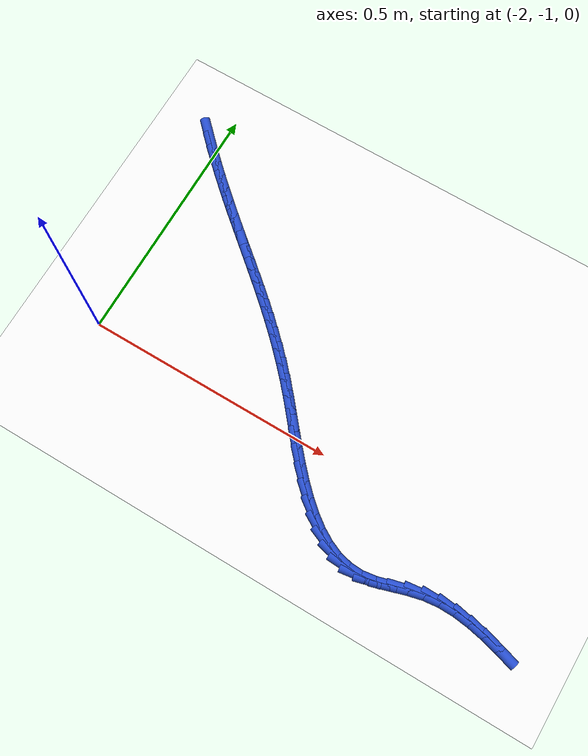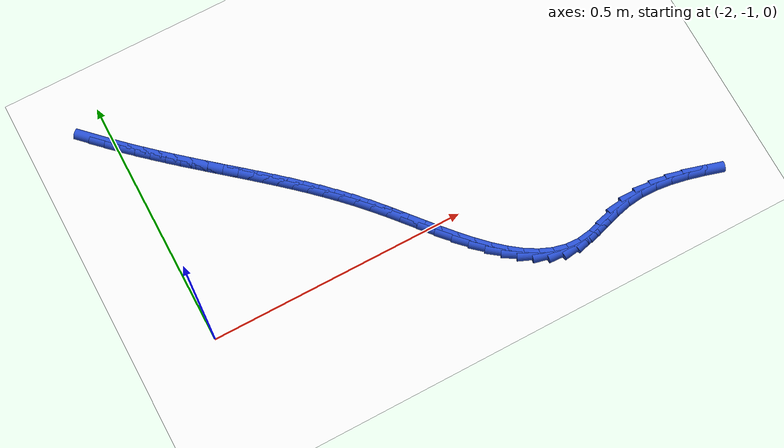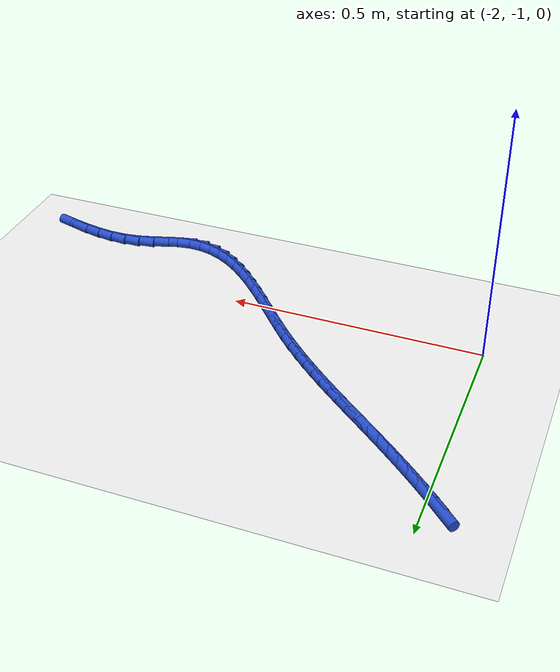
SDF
<sdf version="1.6">
 <world name="default">
  <model name="ground_plane">
   <static>1</static>
   <link name="link">
    <collision name="collision">
     <geometry><plane><normal>0 0 1</normal><size>100 100</size></plane></geometry>
     <surface><friction><ode><mu>100</mu><mu2>50</mu2></ode></friction></surface>
    </collision>
    <visual name="visual">
     <cast_shadows>0</cast_shadows>
     <geometry><plane><normal>0 0 1</normal><size>100 100</size></plane></geometry>
     <material>
      <script><uri>file://media/materials/scripts/gazebo.material</uri><name>Gazebo/WhiteGlow</name></script>
     </material>
    </visual>
   </link>
  </model>
  <model name="line">
   <link name="link_140">
    <pose>-2.0279019053411784 -0.5563829090102963 0.01 0 1.57 -0.7824268850137781</pose>
    <collision name="collision">
     <geometry><cylinder><radius>0.01</radius><length>0.08</length></cylinder></geometry>
    </collision>
    <visual name="visual">
     <material>
      <script><name>Gazebo/Blue</name><uri>file://media/materials/scripts/gazebo.material</uri></script>
     </material>
     <geometry><cylinder><radius>0.01</radius><length>0.08</length></cylinder></geometry>
    </visual>
   </link>
   <link name="link_141">
    <pose>-2.006490066205014 -0.5776678836532863 0.01 0 1.57 -0.7637360443232275</pose>
    <collision name="collision">
     <geometry><cylinder><radius>0.01</radius><length>0.08</length></cylinder></geometry>
    </collision>
    <visual name="visual">
     <material>
      <script><name>Gazebo/Blue</name><uri>file://media/materials/scripts/gazebo.material</uri></script>
     </material>
     <geometry><cylinder><radius>0.01</radius><length>0.08</length></cylinder></geometry>
    </visual>
   </link>
   <link name="link_142">
    <pose>-1.984841494984614 -0.5983982927365451 0.01 0 1.57 -0.7472962214356643</pose>
    <collision name="collision">
     <geometry><cylinder><radius>0.01</radius><length>0.08</length></cylinder></geometry>
    </collision>
    <visual name="visual">
     <material>
      <script><name>Gazebo/Blue</name><uri>file://media/materials/scripts/gazebo.material</uri></script>
     </material>
     <geometry><cylinder><radius>0.01</radius><length>0.08</length></cylinder></geometry>
    </visual>
   </link>
   <link name="link_143">
    <pose>-1.963001435530112 -0.6186343925504257 0.01 0 1.57 -0.733176168077039</pose>
    <collision name="collision">
     <geometry><cylinder><radius>0.01</radius><length>0.08</length></cylinder></geometry>
    </collision>
    <visual name="visual">
     <material>
      <script><name>Gazebo/Blue</name><uri>file://media/materials/scripts/gazebo.material</uri></script>
     </material>
     <geometry><cylinder><radius>0.01</radius><length>0.08</length></cylinder></geometry>
    </visual>
   </link>
   <link name="link_144">
    <pose>-1.9410151316916404 -0.6384364393852803 0.01 0 1.57 -0.7214359435224084</pose>
    <collision name="collision">
     <geometry><cylinder><radius>0.01</radius><length>0.08</length></cylinder></geometry>
    </collision>
    <visual name="visual">
     <material>
      <script><name>Gazebo/Blue</name><uri>file://media/materials/scripts/gazebo.material</uri></script>
     </material>
     <geometry><cylinder><radius>0.01</radius><length>0.08</length></cylinder></geometry>
    </visual>
   </link>
   <link name="link_145">
    <pose>-1.9189278273193322 -0.6578646895314613 0.01 0 1.57 -0.7121288088788986</pose>
    <collision name="collision">
     <geometry><cylinder><radius>0.01</radius><length>0.08</length></cylinder></geometry>
    </collision>
    <visual name="visual">
     <material>
      <script><name>Gazebo/Blue</name><uri>file://media/materials/scripts/gazebo.material</uri></script>
     </material>
     <geometry><cylinder><radius>0.01</radius><length>0.08</length></cylinder></geometry>
    </visual>
   </link>
   <link name="link_146">
    <pose>-1.8967847662633193 -0.6769793992793209 0.01 0 1.57 -0.7053029470883925</pose>
    <collision name="collision">
     <geometry><cylinder><radius>0.01</radius><length>0.08</length></cylinder></geometry>
    </collision>
    <visual name="visual">
     <material>
      <script><name>Gazebo/Blue</name><uri>file://media/materials/scripts/gazebo.material</uri></script>
     </material>
     <geometry><cylinder><radius>0.01</radius><length>0.08</length></cylinder></geometry>
    </visual>
   </link>
   <link name="link_147">
    <pose>-1.8746311923737333 -0.6958408249192126 0.01 0 1.57 -0.7010029186592416</pose>
    <collision name="collision">
     <geometry><cylinder><radius>0.01</radius><length>0.08</length></cylinder></geometry>
    </collision>
    <visual name="visual">
     <material>
      <script><name>Gazebo/Blue</name><uri>file://media/materials/scripts/gazebo.material</uri></script>
     </material>
     <geometry><cylinder><radius>0.01</radius><length>0.08</length></cylinder></geometry>
    </visual>
   </link>
   <link name="link_148">
    <pose>-1.8525123495007094 -0.7145092227414875 0.01 0 1.57 -0.699270776691277</pose>
    <collision name="collision">
     <geometry><cylinder><radius>0.01</radius><length>0.08</length></cylinder></geometry>
    </collision>
    <visual name="visual">
     <material>
      <script><name>Gazebo/Blue</name><uri>file://media/materials/scripts/gazebo.material</uri></script>
     </material>
     <geometry><cylinder><radius>0.01</radius><length>0.08</length></cylinder></geometry>
    </visual>
   </link>
   <link name="link_149">
    <pose>-1.8304734814943784 -0.7330448490364986 0.01 0 1.57 -0.7001537817270586</pose>
    <collision name="collision">
     <geometry><cylinder><radius>0.01</radius><length>0.08</length></cylinder></geometry>
    </collision>
    <visual name="visual">
     <material>
      <script><name>Gazebo/Blue</name><uri>file://media/materials/scripts/gazebo.material</uri></script>
     </material>
     <geometry><cylinder><radius>0.01</radius><length>0.08</length></cylinder></geometry>
    </visual>
   </link>
   <link name="link_150">
    <pose>-1.808559283847693 -0.7515086846787563 0.01 0 1.57 -0.7040315821106202</pose>
    <collision name="collision">
     <geometry><cylinder><radius>0.01</radius><length>0.08</length></cylinder></geometry>
    </collision>
    <visual name="visual">
     <material>
      <script><name>Gazebo/Blue</name><uri>file://media/materials/scripts/gazebo.material</uri></script>
     </material>
     <geometry><cylinder><radius>0.01</radius><length>0.08</length></cylinder></geometry>
    </visual>
   </link>
   <link name="link_151">
    <pose>-1.786787416221254 -0.7699974349511035 0.01 0 1.57 -0.711387075195804</pose>
    <collision name="collision">
     <geometry><cylinder><radius>0.01</radius><length>0.08</length></cylinder></geometry>
    </collision>
    <visual name="visual">
     <material>
      <script><name>Gazebo/Blue</name><uri>file://media/materials/scripts/gazebo.material</uri></script>
     </material>
     <geometry><cylinder><radius>0.01</radius><length>0.08</length></cylinder></geometry>
    </visual>
   </link>
   <link name="link_152">
    <pose>-1.7651366968531674 -0.7886591291281646 0.01 0 1.57 -0.7221601058411963</pose>
    <collision name="collision">
     <geometry><cylinder><radius>0.01</radius><length>0.08</length></cylinder></geometry>
    </collision>
    <visual name="visual">
     <material>
      <script><name>Gazebo/Blue</name><uri>file://media/materials/scripts/gazebo.material</uri></script>
     </material>
     <geometry><cylinder><radius>0.01</radius><length>0.08</length></cylinder></geometry>
    </visual>
   </link>
   <link name="link_153">
    <pose>-1.7435829369074438 -0.8076457699499096 0.01 0 1.57 -0.736166518641259</pose>
    <collision name="collision">
     <geometry><cylinder><radius>0.01</radius><length>0.08</length></cylinder></geometry>
    </collision>
    <visual name="visual">
     <material>
      <script><name>Gazebo/Blue</name><uri>file://media/materials/scripts/gazebo.material</uri></script>
     </material>
     <geometry><cylinder><radius>0.01</radius><length>0.08</length></cylinder></geometry>
    </visual>
   </link>
   <link name="link_154">
    <pose>-1.7221019475480916 -0.8271093601563069 0.01 0 1.57 -0.7531428426848759</pose>
    <collision name="collision">
     <geometry><cylinder><radius>0.01</radius><length>0.08</length></cylinder></geometry>
    </collision>
    <visual name="visual">
     <material>
      <script><name>Gazebo/Blue</name><uri>file://media/materials/scripts/gazebo.material</uri></script>
     </material>
     <geometry><cylinder><radius>0.01</radius><length>0.08</length></cylinder></geometry>
    </visual>
   </link>
   <link name="link_155">
    <pose>-1.7006695399391207 -0.8472019024873266 0.01 0 1.57 -0.7727569639034171</pose>
    <collision name="collision">
     <geometry><cylinder><radius>0.01</radius><length>0.08</length></cylinder></geometry>
    </collision>
    <visual name="visual">
     <material>
      <script><name>Gazebo/Blue</name><uri>file://media/materials/scripts/gazebo.material</uri></script>
     </material>
     <geometry><cylinder><radius>0.01</radius><length>0.08</length></cylinder></geometry>
    </visual>
   </link>
   <link name="link_156">
    <pose>-1.6792615252445415 -0.8680753996829373 0.01 0 1.57 -0.7946227301663296</pose>
    <collision name="collision">
     <geometry><cylinder><radius>0.01</radius><length>0.08</length></cylinder></geometry>
    </collision>
    <visual name="visual">
     <material>
      <script><name>Gazebo/Blue</name><uri>file://media/materials/scripts/gazebo.material</uri></script>
     </material>
     <geometry><cylinder><radius>0.01</radius><length>0.08</length></cylinder></geometry>
    </visual>
   </link>
   <link name="link_157">
    <pose>-1.6578537146283632 -0.8898818544831087 0.01 0 1.57 -0.8183175403912574</pose>
    <collision name="collision">
     <geometry><cylinder><radius>0.01</radius><length>0.08</length></cylinder></geometry>
    </collision>
    <visual name="visual">
     <material>
      <script><name>Gazebo/Blue</name><uri>file://media/materials/scripts/gazebo.material</uri></script>
     </material>
     <geometry><cylinder><radius>0.01</radius><length>0.08</length></cylinder></geometry>
    </visual>
   </link>
   <link name="link_158">
    <pose>-1.6364219192545946 -0.9127732696278096 0.01 0 1.57 -0.8432465771104102</pose>
    <collision name="collision">
     <geometry><cylinder><radius>0.01</radius><length>0.08</length></cylinder></geometry>
    </collision>
    <visual name="visual">
     <material>
      <script><name>Gazebo/Blue</name><uri>file://media/materials/scripts/gazebo.material</uri></script>
     </material>
     <geometry><cylinder><radius>0.01</radius><length>0.08</length></cylinder></geometry>
    </visual>
   </link>
   <link name="link_159">
    <pose>-1.6149415785288808 -0.9368945376398515 0.01 0 1.57 -0.8630641915336488</pose>
    <collision name="collision">
     <geometry><cylinder><radius>0.01</radius><length>0.08</length></cylinder></geometry>
    </collision>
    <visual name="visual">
     <material>
      <script><name>Gazebo/Blue</name><uri>file://media/materials/scripts/gazebo.material</uri></script>
     </material>
     <geometry><cylinder><radius>0.01</radius><length>0.08</length></cylinder></geometry>
    </visual>
   </link>
   <link name="link_160">
    <pose>-1.5933731143628405 -0.9621033277980869 0.01 0 1.57 -0.8706498475789117</pose>
    <collision name="collision">
     <geometry><cylinder><radius>0.01</radius><length>0.08</length></cylinder></geometry>
    </collision>
    <visual name="visual">
     <material>
      <script><name>Gazebo/Blue</name><uri>file://media/materials/scripts/gazebo.material</uri></script>
     </material>
     <geometry><cylinder><radius>0.01</radius><length>0.08</length></cylinder></geometry>
    </visual>
   </link>
   <link name="link_161">
    <pose>-1.5716571068749825 -0.9878778170258039 0.01 0 1.57 -0.8662835262264167</pose>
    <collision name="collision">
     <geometry><cylinder><radius>0.01</radius><length>0.08</length></cylinder></geometry>
    </collision>
    <visual name="visual">
     <material>
      <script><name>Gazebo/Blue</name><uri>file://media/materials/scripts/gazebo.material</uri></script>
     </material>
     <geometry><cylinder><radius>0.01</radius><length>0.08</length></cylinder></geometry>
    </visual>
   </link>
   <link name="link_162">
    <pose>-1.5497327760324577 -1.0136701681133524 0.01 0 1.57 -0.8499776946854024</pose>
    <collision name="collision">
     <geometry><cylinder><radius>0.01</radius><length>0.08</length></cylinder></geometry>
    </collision>
    <visual name="visual">
     <material>
      <script><name>Gazebo/Blue</name><uri>file://media/materials/scripts/gazebo.material</uri></script>
     </material>
     <geometry><cylinder><radius>0.01</radius><length>0.08</length></cylinder></geometry>
    </visual>
   </link>
   <link name="link_163">
    <pose>-1.5275393418024164 -1.0389325438510795 0.01 0 1.57 -0.8209498849244024</pose>
    <collision name="collision">
     <geometry><cylinder><radius>0.01</radius><length>0.08</length></cylinder></geometry>
    </collision>
    <visual name="visual">
     <material>
      <script><name>Gazebo/Blue</name><uri>file://media/materials/scripts/gazebo.material</uri></script>
     </material>
     <geometry><cylinder><radius>0.01</radius><length>0.08</length></cylinder></geometry>
    </visual>
   </link>
   <link name="link_164">
    <pose>-1.5050160241520083 -1.063117107029335 0.01 0 1.57 -0.7775899848685209</pose>
    <collision name="collision">
     <geometry><cylinder><radius>0.01</radius><length>0.08</length></cylinder></geometry>
    </collision>
    <visual name="visual">
     <material>
      <script><name>Gazebo/Blue</name><uri>file://media/materials/scripts/gazebo.material</uri></script>
     </material>
     <geometry><cylinder><radius>0.01</radius><length>0.08</length></cylinder></geometry>
    </visual>
   </link>
   <link name="link_165">
    <pose>-1.4821020430483827 -1.0856760204384674 0.01 0 1.57 -0.7173902861097134</pose>
    <collision name="collision">
     <geometry><cylinder><radius>0.01</radius><length>0.08</length></cylinder></geometry>
    </collision>
    <visual name="visual">
     <material>
      <script><name>Gazebo/Blue</name><uri>file://media/materials/scripts/gazebo.material</uri></script>
     </material>
     <geometry><cylinder><radius>0.01</radius><length>0.08</length></cylinder></geometry>
    </visual>
   </link>
   <link name="link_166">
    <pose>-1.4587366184586905 -1.106061446868826 0.01 0 1.57 -0.6369253362784633</pose>
    <collision name="collision">
     <geometry><cylinder><radius>0.01</radius><length>0.08</length></cylinder></geometry>
    </collision>
    <visual name="visual">
     <material>
      <script><name>Gazebo/Blue</name><uri>file://media/materials/scripts/gazebo.material</uri></script>
     </material>
     <geometry><cylinder><radius>0.01</radius><length>0.08</length></cylinder></geometry>
    </visual>
   </link>
   <link name="link_167">
    <pose>-1.4348589703500807 -1.1237255491107596 0.01 0 1.57 -0.5320948210906883</pose>
    <collision name="collision">
     <geometry><cylinder><radius>0.01</radius><length>0.08</length></cylinder></geometry>
    </collision>
    <visual name="visual">
     <material>
      <script><name>Gazebo/Blue</name><uri>file://media/materials/scripts/gazebo.material</uri></script>
     </material>
     <geometry><cylinder><radius>0.01</radius><length>0.08</length></cylinder></geometry>
    </visual>
   </link>
   <link name="link_168">
    <pose>-1.4104083186897036 -1.1381204899546167 0.01 0 1.57 -0.3990666462428174</pose>
    <collision name="collision">
     <geometry><cylinder><radius>0.01</radius><length>0.08</length></cylinder></geometry>
    </collision>
    <visual name="visual">
     <material>
      <script><name>Gazebo/Blue</name><uri>file://media/materials/scripts/gazebo.material</uri></script>
     </material>
     <geometry><cylinder><radius>0.01</radius><length>0.08</length></cylinder></geometry>
    </visual>
   </link>
   <link name="link_169">
    <pose>-1.385323883444709 -1.1486984321907463 0.01 0 1.57 -0.23650378326188656</pose>
    <collision name="collision">
     <geometry><cylinder><radius>0.01</radius><length>0.08</length></cylinder></geometry>
    </collision>
    <visual name="visual">
     <material>
      <script><name>Gazebo/Blue</name><uri>file://media/materials/scripts/gazebo.material</uri></script>
     </material>
     <geometry><cylinder><radius>0.01</radius><length>0.08</length></cylinder></geometry>
    </visual>
   </link>
   <link name="link_170">
    <pose>-1.3595448845822462 -1.1549115386094972 0.01 0 1.57 -0.04897026212662395</pose>
    <collision name="collision">
     <geometry><cylinder><radius>0.01</radius><length>0.08</length></cylinder></geometry>
    </collision>
    <visual name="visual">
     <material>
      <script><name>Gazebo/Blue</name><uri>file://media/materials/scripts/gazebo.material</uri></script>
     </material>
     <geometry><cylinder><radius>0.01</radius><length>0.08</length></cylinder></geometry>
    </visual>
   </link>
   <link name="link_171">
    <pose>-1.333010542069467 -1.156211972001219 0.01 0 1.57 0.14411692037891577</pose>
    <collision name="collision">
     <geometry><cylinder><radius>0.01</radius><length>0.08</length></cylinder></geometry>
    </collision>
    <visual name="visual">
     <material>
      <script><name>Gazebo/Blue</name><uri>file://media/materials/scripts/gazebo.material</uri></script>
     </material>
     <geometry><cylinder><radius>0.01</radius><length>0.08</length></cylinder></geometry>
    </visual>
   </link>
   <link name="link_172">
    <pose>-1.305665468618555 -1.1522435719687336 0.01 0 1.57 0.2671510499459104</pose>
    <collision name="collision">
     <geometry><cylinder><radius>0.01</radius><length>0.08</length></cylinder></geometry>
    </collision>
    <visual name="visual">
     <material>
      <script><name>Gazebo/Blue</name><uri>file://media/materials/scripts/gazebo.material</uri></script>
     </material>
     <geometry><cylinder><radius>0.01</radius><length>0.08</length></cylinder></geometry>
    </visual>
   </link>
   <link name="link_173">
    <pose>-1.2775073585955115 -1.1445368837048582 0.01 0 1.57 0.29648691639673885</pose>
    <collision name="collision">
     <geometry><cylinder><radius>0.01</radius><length>0.08</length></cylinder></geometry>
    </collision>
    <visual name="visual">
     <material>
      <script><name>Gazebo/Blue</name><uri>file://media/materials/scripts/gazebo.material</uri></script>
     </material>
     <geometry><cylinder><radius>0.01</radius><length>0.08</length></cylinder></geometry>
    </visual>
   </link>
   <link name="link_174">
    <pose>-1.2485640811372807 -1.1356949681386097 0.01 0 1.57 0.24297031937284255</pose>
    <collision name="collision">
     <geometry><cylinder><radius>0.01</radius><length>0.08</length></cylinder></geometry>
    </collision>
    <visual name="visual">
     <material>
      <script><name>Gazebo/Blue</name><uri>file://media/materials/scripts/gazebo.material</uri></script>
     </material>
     <geometry><cylinder><radius>0.01</radius><length>0.08</length></cylinder></geometry>
    </visual>
   </link>
   <link name="link_175">
    <pose>-1.2188638533933052 -1.1283332557669292 0.01 0 1.57 0.11751427084846526</pose>
    <collision name="collision">
     <geometry><cylinder><radius>0.01</radius><length>0.08</length></cylinder></geometry>
    </collision>
    <visual name="visual">
     <material>
      <script><name>Gazebo/Blue</name><uri>file://media/materials/scripts/gazebo.material</uri></script>
     </material>
     <geometry><cylinder><radius>0.01</radius><length>0.08</length></cylinder></geometry>
    </visual>
   </link>
   <link name="link_176">
    <pose>-1.1884499082382798 -1.1247426396128335 0.01 0 1.57 -0.011098742811806549</pose>
    <collision name="collision">
     <geometry><cylinder><radius>0.01</radius><length>0.08</length></cylinder></geometry>
    </collision>
    <visual name="visual">
     <material>
      <script><name>Gazebo/Blue</name><uri>file://media/materials/scripts/gazebo.material</uri></script>
     </material>
     <geometry><cylinder><radius>0.01</radius><length>0.08</length></cylinder></geometry>
    </visual>
   </link>
   <link name="link_177">
    <pose>-1.1574639117254688 -1.1250865593405965 0.01 0 1.57 -0.11376292834579319</pose>
    <collision name="collision">
     <geometry><cylinder><radius>0.01</radius><length>0.08</length></cylinder></geometry>
    </collision>
    <visual name="visual">
     <material>
      <script><name>Gazebo/Blue</name><uri>file://media/materials/scripts/gazebo.material</uri></script>
     </material>
     <geometry><cylinder><radius>0.01</radius><length>0.08</length></cylinder></geometry>
    </visual>
   </link>
   <link name="link_178">
    <pose>-1.126087177352277 -1.128671547528712 0.01 0 1.57 -0.19169724540073574</pose>
    <collision name="collision">
     <geometry><cylinder><radius>0.01</radius><length>0.08</length></cylinder></geometry>
    </collision>
    <visual name="visual">
     <material>
      <script><name>Gazebo/Blue</name><uri>file://media/materials/scripts/gazebo.material</uri></script>
     </material>
     <geometry><cylinder><radius>0.01</radius><length>0.08</length></cylinder></geometry>
    </visual>
   </link>
   <link name="link_179">
    <pose>-1.0945011275746312 -1.134801781816125 0.01 0 1.57 -0.24724509584612386</pose>
    <collision name="collision">
     <geometry><cylinder><radius>0.01</radius><length>0.08</length></cylinder></geometry>
    </collision>
    <visual name="visual">
     <material>
      <script><name>Gazebo/Blue</name><uri>file://media/materials/scripts/gazebo.material</uri></script>
     </material>
     <geometry><cylinder><radius>0.01</radius><length>0.08</length></cylinder></geometry>
    </visual>
   </link>
   <link name="link_180">
    <pose>-1.0628871848484616 -1.1427814398417815 0.01 0 1.57 -0.282542963992389</pose>
    <collision name="collision">
     <geometry><cylinder><radius>0.01</radius><length>0.08</length></cylinder></geometry>
    </collision>
    <visual name="visual">
     <material>
      <script><name>Gazebo/Blue</name><uri>file://media/materials/scripts/gazebo.material</uri></script>
     </material>
     <geometry><cylinder><radius>0.01</radius><length>0.08</length></cylinder></geometry>
    </visual>
   </link>
  </model>
 </world>
</sdf>
